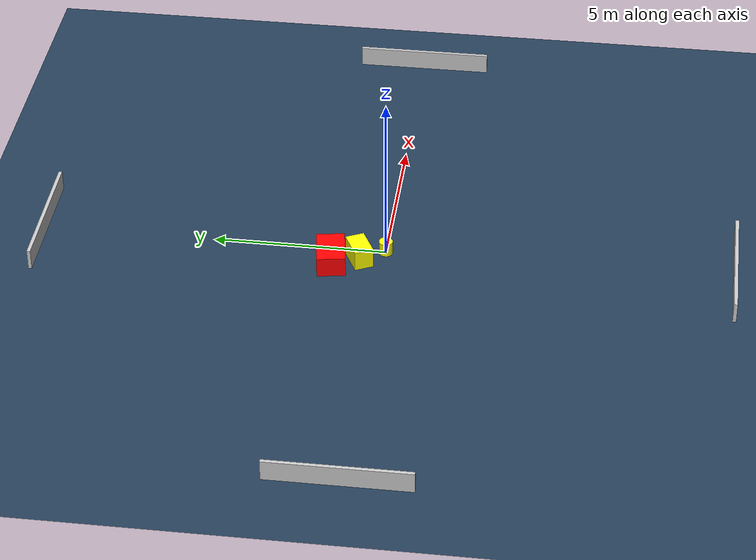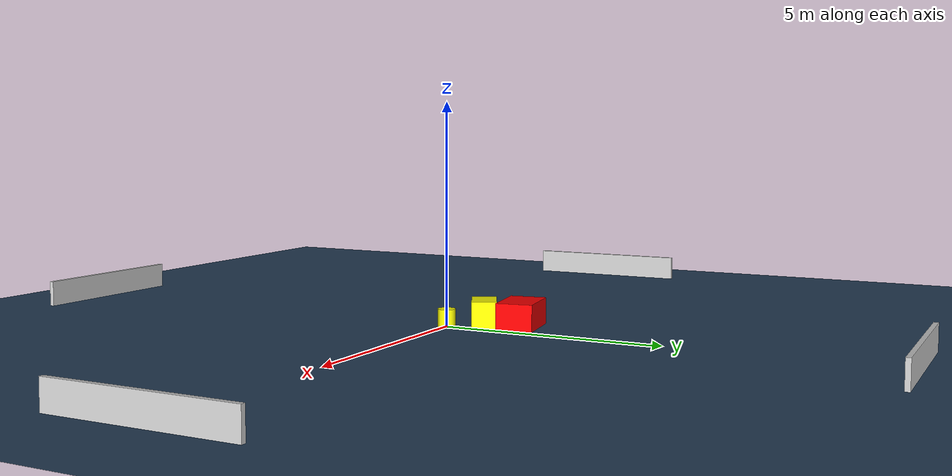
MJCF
<?xml version="1.0" ?>
<mujoco model="generated_environment">
  <option timestep="0.01" integrator="RK4" cone="elliptic"/>
  <default>
    <geom density="1"/>
  </default>
  <asset>
    <texture builtin="gradient" height="3072" name="skybox" rgb1="0.3 0.5 0.7" rgb2="0 0 0" type="skybox" width="512"/>
    <texture builtin="checker" height="300" name="groundplane" rgb1="0.2 0.3 0.4" rgb2="0.1 0.2 0.3" type="2d" width="300"/>
    <material name="groundplane" reflectance="0.2" texrepeat="5 5" texture="groundplane"/>
  </asset>
  <worldbody>
    <light dir="0 0 -1" directional="true" pos="0 0 1.5"/>
    <geom condim="3" friction="0.5 0.005 0.001" material="groundplane" name="floor" pos="0 0 0" size="0 0 0.05" type="plane"/>
    <body name="walls">
      <geom name="wall_1" condim="4" pos="-10.0 0.0 0.3" rgba="0.800000011920929 0.800000011920929 0.800000011920929 1.0" size="0.05 2.0 0.3" type="box"/>
      <geom name="wall_2" condim="4" pos="10.0 0.0 0.3" rgba="0.800000011920929 0.800000011920929 0.800000011920929 1.0" size="0.05 2.0 0.3" type="box"/>
      <geom name="wall_3" condim="4" pos="0.0 -10.0 0.3" rgba="0.800000011920929 0.800000011920929 0.800000011920929 1.0" size="2.0 0.05 0.3" type="box"/>
      <geom name="wall_4" condim="4" pos="0.0 10.0 0.3" rgba="0.800000011920929 0.800000011920929 0.800000011920929 1.0" size="2.0 0.05 0.3" type="box"/>
    </body>
    <body name="robot">
      <joint name="joint_x" type="slide" pos="0 0 0" axis="1 0 0"/>
      <joint name="joint_y" type="slide" pos="0 0 0" axis="0 1 0"/>
      <geom name="robot" type="cylinder" pos="0.0 0.0 0.2" size="0.2 0.2 0.0" mass="5.0" friction="1.0 0.005 0.0001" condim="4" rgba="1.0 1.0 0.0 1.0"/>
    </body>
    <body name="obstacle_1_movable">
      <geom name="obstacle_1_movable" condim="4" pos="-0.4508039040678378 0.708314178332597 0.3" euler="0 0 296.47091357755136" friction="0.0 0.005 0.001" rgba="1.0 1.0 0.0 1.0" size="0.27966118798932715 0.42366375278167373 0.3" type="box" mass="0.1"/>
      <joint type="free"/>
    </body>
    <body name="obstacle_2_static">
      <geom name="obstacle_2_static" condim="4" pos="-0.7040778738316398 1.5007087764518976 0.3" euler="0 0 188.73020892204977" friction="0.0 0.005 0.001" rgba="1.0 0.0 0.0 1.0" size="0.6059512965283362 0.4097588483688433 0.3" type="box"/>
    </body>
  </worldbody>
  <actuator>
    <motor name="actuator_x" joint="joint_x" gear="1" ctrlrange="-1 1"/>
    <motor name="actuator_y" joint="joint_y" gear="1" ctrlrange="-1 1"/>
  </actuator>
</mujoco>
